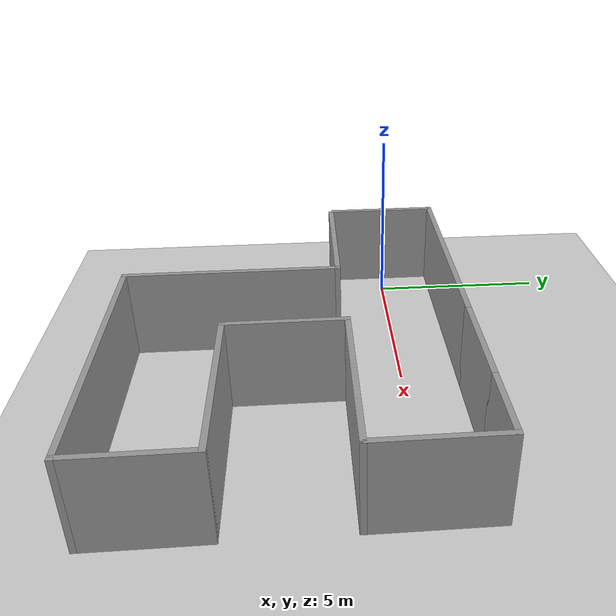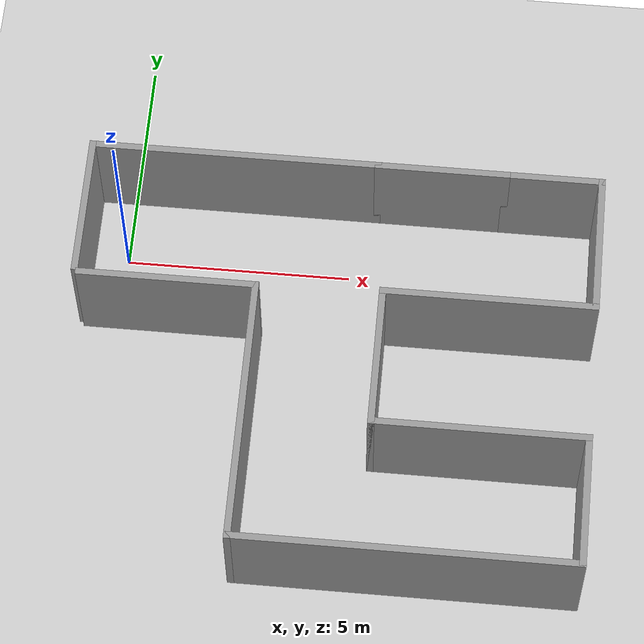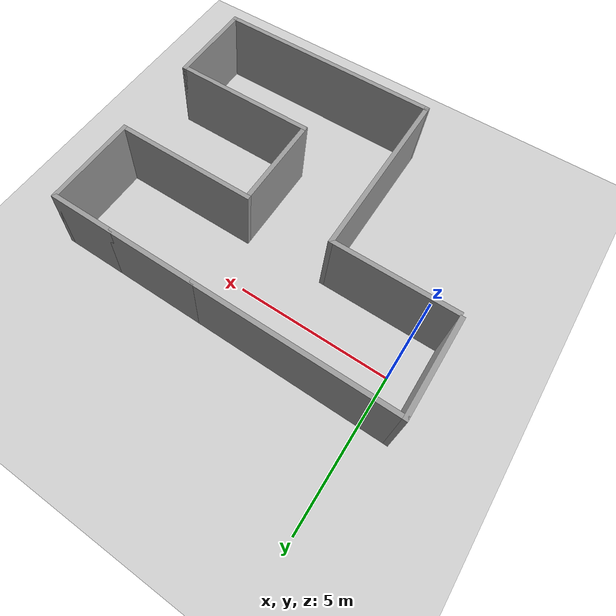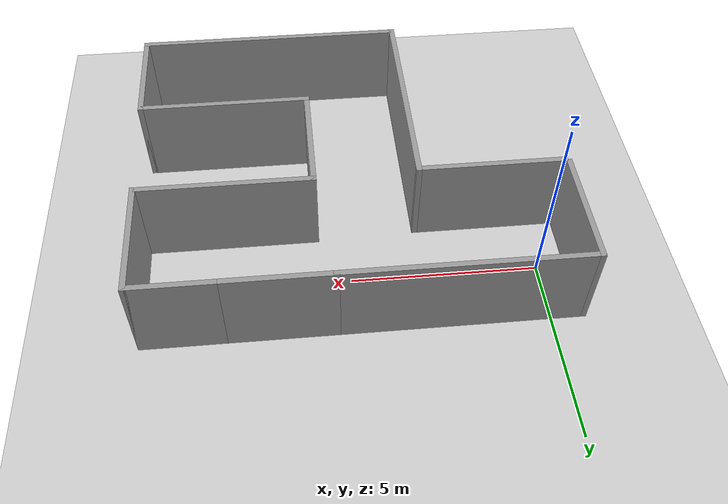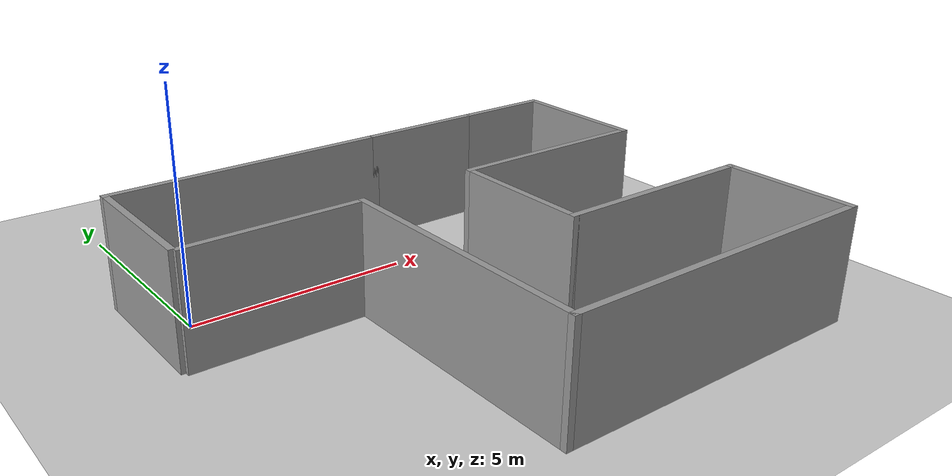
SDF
<sdf version="1.7">
 <world name="lab_world">
  <gravity>0 0 -9.8</gravity>
  <model name="ground_plane">
   <static>1</static>
   <link name="link">
    <collision name="collision">
     <geometry><plane><normal>0 0 1</normal><size>100 100</size></plane></geometry>
     <surface><friction><ode><mu>100</mu><mu2>50</mu2></ode></friction></surface>
    </collision>
    <visual name="visual">
     <cast_shadows>0</cast_shadows>
     <geometry><plane><normal>0 0 1</normal><size>100 100</size></plane></geometry>
     <material>
      <script><uri>file://media/materials/scripts/gazebo.material</uri><name>Gazebo/Grey</name></script>
     </material>
    </visual>
   </link>
  </model>
  <light name="sun" type="directional">
   <pose>0 0 10 0 -0 0</pose>
   <diffuse>0.8 0.8 0.8 1</diffuse>
   <specular>0.2 0.2 0.2 1</specular>
   <attenuation>
    <range>1000</range>
    <constant>0.9</constant>
    <linear>0.01</linear>
    <quadratic>0.001</quadratic>
   </attenuation>
   <direction>-0.5 0.1 -0.9</direction>
   <spot><inner_angle>0</inner_angle><outer_angle>0</outer_angle><falloff>0</falloff></spot>
  </light>
  <magnetic_field>6e-06 2.3e-05 -4.2e-05</magnetic_field>
  <atmosphere type="adiabatic"/>
  <physics type="ode">
   <max_step_size>0.001</max_step_size>
   <real_time_factor>1</real_time_factor>
   <real_time_update_rate>1000</real_time_update_rate>
  </physics>
  <scene><ambient>0.4 0.4 0.4 1</ambient><background>0.7 0.7 0.7 1</background><shadows>1</shadows></scene>
  <spherical_coordinates>
   <surface_model>EARTH_WGS84</surface_model>
   <latitude_deg>0</latitude_deg>
   <longitude_deg>0</longitude_deg>
   <elevation>0</elevation>
   <heading_deg>0</heading_deg>
  </spherical_coordinates>
  <model name="place1">
   <pose>4.80745 -2.93504 0 0 -0 0</pose>
   <link name="Wall_10">
    <collision name="Wall_10_Collision">
     <geometry><box><size>4.75 0.15 2.5</size></box></geometry>
     <pose>0 0 1.25 0 -0 0</pose>
    </collision>
    <visual name="Wall_10_Visual">
     <pose>0 0 1.25 0 -0 0</pose>
     <geometry><box><size>4.75 0.15 2.5</size></box></geometry>
     <material>
      <script><uri>file://media/materials/scripts/gazebo.material</uri><name>Gazebo/Grey</name></script>
      <ambient>1 1 1 1</ambient>
     </material>
     <meta><layer>0</layer></meta>
    </visual>
    <pose>3.35 1.425 0 0 -0 3.14159</pose>
   </link>
   <link name="Wall_13">
    <collision name="Wall_13_Collision">
     <geometry><box><size>3.25 0.15 2.5</size></box></geometry>
     <pose>0 0 1.25 0 -0 0</pose>
    </collision>
    <visual name="Wall_13_Visual">
     <pose>0 0 1.25 0 -0 0</pose>
     <geometry><box><size>3.25 0.15 2.5</size></box></geometry>
     <material>
      <script><uri>file://media/materials/scripts/gazebo.material</uri><name>Gazebo/Grey</name></script>
      <ambient>1 1 1 1</ambient>
     </material>
     <meta><layer>0</layer></meta>
    </visual>
    <pose>1.05 -0.125 0 0 -0 -1.5708</pose>
   </link>
   <link name="Wall_14">
    <collision name="Wall_14_Collision">
     <geometry><box><size>4.75 0.15 2.5</size></box></geometry>
     <pose>0 0 1.25 0 -0 0</pose>
    </collision>
    <visual name="Wall_14_Visual">
     <pose>0 0 1.25 0 -0 0</pose>
     <geometry><box><size>4.75 0.15 2.5</size></box></geometry>
     <material>
      <script><uri>file://media/materials/scripts/gazebo.material</uri><name>Gazebo/Grey</name></script>
      <ambient>1 1 1 1</ambient>
     </material>
     <meta><layer>0</layer></meta>
    </visual>
    <pose>3.35 -1.675 0 0 -0 0</pose>
   </link>
   <link name="Wall_15">
    <collision name="Wall_15_Collision">
     <geometry><box><size>3 0.15 2.5</size></box></geometry>
     <pose>0 0 1.25 0 -0 0</pose>
    </collision>
    <visual name="Wall_15_Visual">
     <pose>0 0 1.25 0 -0 0</pose>
     <geometry><box><size>3 0.15 2.5</size></box></geometry>
     <material>
      <script><uri>file://media/materials/scripts/gazebo.material</uri><name>Gazebo/Grey</name></script>
      <ambient>1 1 1 1</ambient>
     </material>
     <meta><layer>0</layer></meta>
    </visual>
    <pose>5.65 -3.1 0 0 -0 -1.5708</pose>
   </link>
   <link name="Wall_16">
    <collision name="Wall_16_Collision">
     <geometry><box><size>7.5 0.15 2.5</size></box></geometry>
     <pose>0 0 1.25 0 -0 0</pose>
    </collision>
    <visual name="Wall_16_Visual">
     <pose>0 0 1.25 0 -0 0</pose>
     <geometry><box><size>7.5 0.15 2.5</size></box></geometry>
     <material>
      <script><uri>file://media/materials/scripts/gazebo.material</uri><name>Gazebo/Grey</name></script>
      <ambient>1 1 1 1</ambient>
     </material>
     <meta><layer>0</layer></meta>
    </visual>
    <pose>1.975 -4.525 0 0 -0 3.14159</pose>
   </link>
   <link name="Wall_17">
    <collision name="Wall_17_Collision">
     <geometry><box><size>6 0.15 2.5</size></box></geometry>
     <pose>0 0 1.25 0 -0 0</pose>
    </collision>
    <visual name="Wall_17_Visual">
     <pose>0 0 1.25 0 -0 0</pose>
     <geometry><box><size>6 0.15 2.5</size></box></geometry>
     <material>
      <script><uri>file://media/materials/scripts/gazebo.material</uri><name>Gazebo/Grey</name></script>
      <ambient>1 1 1 1</ambient>
     </material>
     <meta><layer>0</layer></meta>
    </visual>
    <pose>-1.7 -1.6 0 0 -0 1.5708</pose>
   </link>
   <link name="Wall_18">
    <collision name="Wall_18_Collision">
     <geometry><box><size>4 0.15 2.5</size></box></geometry>
     <pose>0 0 1.25 0 -0 0</pose>
    </collision>
    <visual name="Wall_18_Visual">
     <pose>0 0 1.25 0 -0 0</pose>
     <geometry><box><size>4 0.15 2.5</size></box></geometry>
     <material>
      <script><uri>file://media/materials/scripts/gazebo.material</uri><name>Gazebo/Grey</name></script>
      <ambient>1 1 1 1</ambient>
     </material>
     <meta><layer>0</layer></meta>
    </visual>
    <pose>-3.625 1.325 0 0 -0 3.14159</pose>
   </link>
   <link name="Wall_21">
    <collision name="Wall_21_Collision">
     <geometry><box><size>3.25 0.15 2.5</size></box></geometry>
     <pose>0 0 1.25 0 -0 0</pose>
    </collision>
    <visual name="Wall_21_Visual">
     <pose>0 0 1.25 0 -0 0</pose>
     <geometry><box><size>3.25 0.15 2.5</size></box></geometry>
     <material>
      <script><uri>file://media/materials/scripts/gazebo.material</uri><name>Gazebo/Grey</name></script>
      <ambient>1 1 1 1</ambient>
     </material>
     <meta><layer>0</layer></meta>
    </visual>
    <pose>-5.65 2.975 0 0 -0 -1.5708</pose>
   </link>
   <link name="Wall_4">
    <collision name="Wall_4_Collision">
     <geometry><box><size>6.5 0.15 2.5</size></box></geometry>
     <pose>0 0 1.25 0 -0 0</pose>
    </collision>
    <visual name="Wall_4_Visual">
     <pose>0 0 1.25 0 -0 0</pose>
     <geometry><box><size>6.5 0.15 2.5</size></box></geometry>
     <material>
      <script><uri>file://media/materials/scripts/gazebo.material</uri><name>Gazebo/Grey</name></script>
      <ambient>1 1 1 1</ambient>
     </material>
     <meta><layer>0</layer></meta>
    </visual>
    <pose>-2.475 4.525 0 0 -0 0</pose>
   </link>
   <link name="Wall_7">
    <collision name="Wall_7_Collision">
     <geometry><box><size>3 0.15 2.5</size></box></geometry>
     <pose>0 0 1.25 0 -0 0</pose>
    </collision>
    <visual name="Wall_7_Visual">
     <pose>0 0 1.25 0 -0 0</pose>
     <geometry><box><size>3 0.15 2.5</size></box></geometry>
     <material>
      <script><uri>file://media/materials/scripts/gazebo.material</uri><name>Gazebo/Grey</name></script>
      <ambient>1 1 1 1</ambient>
     </material>
     <meta><layer>0</layer></meta>
    </visual>
    <pose>2.125 4.525 0 0 -0 0</pose>
   </link>
   <link name="Wall_8">
    <collision name="Wall_8_Collision">
     <geometry><box><size>2.25 0.15 2.5</size></box></geometry>
     <pose>0 0 1.25 0 -0 0</pose>
    </collision>
    <visual name="Wall_8_Visual">
     <pose>0 0 1.25 0 -0 0</pose>
     <geometry><box><size>2.25 0.15 2.5</size></box></geometry>
     <material>
      <script><uri>file://media/materials/scripts/gazebo.material</uri><name>Gazebo/Grey</name></script>
      <ambient>1 1 1 1</ambient>
     </material>
     <meta><layer>0</layer></meta>
    </visual>
    <pose>4.6 4.525 0 0 -0 0</pose>
   </link>
   <link name="Wall_9">
    <collision name="Wall_9_Collision">
     <geometry><box><size>3.25 0.15 2.5</size></box></geometry>
     <pose>0 0 1.25 0 -0 0</pose>
    </collision>
    <visual name="Wall_9_Visual">
     <pose>0 0 1.25 0 -0 0</pose>
     <geometry><box><size>3.25 0.15 2.5</size></box></geometry>
     <material>
      <script><uri>file://media/materials/scripts/gazebo.material</uri><name>Gazebo/Grey</name></script>
      <ambient>1 1 1 1</ambient>
     </material>
     <meta><layer>0</layer></meta>
    </visual>
    <pose>5.65 2.975 0 0 -0 -1.5708</pose>
   </link>
   <static>1</static>
  </model>
 </world>
</sdf>
